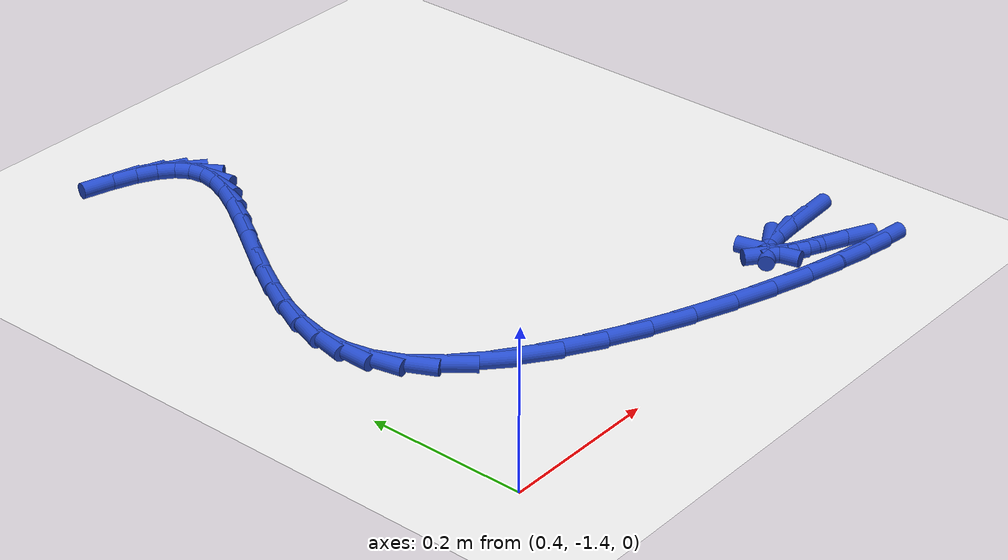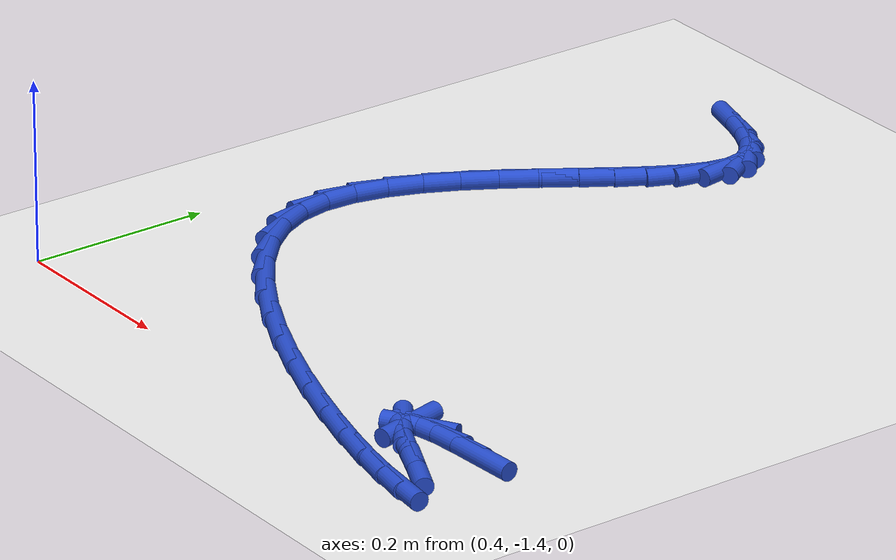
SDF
<sdf version="1.6">
 <world name="default">
  <model name="ground_plane">
   <static>1</static>
   <link name="link">
    <collision name="collision">
     <geometry><plane><normal>0 0 1</normal><size>100 100</size></plane></geometry>
     <surface><friction><ode><mu>100</mu><mu2>50</mu2></ode></friction></surface>
    </collision>
    <visual name="visual">
     <cast_shadows>0</cast_shadows>
     <geometry><plane><normal>0 0 1</normal><size>100 100</size></plane></geometry>
     <material>
      <script><uri>file://media/materials/scripts/gazebo.material</uri><name>Gazebo/WhiteGlow</name></script>
     </material>
    </visual>
   </link>
  </model>
  <model name="line">
   <link name="link_179">
    <pose>1.0431721151599405 -1.3121302822743477 0.01 0 1.57 0.05178944359856112</pose>
    <collision name="collision">
     <geometry><cylinder><radius>0.01</radius><length>0.08</length></cylinder></geometry>
    </collision>
    <visual name="visual">
     <material>
      <script><name>Gazebo/Blue</name><uri>file://media/materials/scripts/gazebo.material</uri></script>
     </material>
     <geometry><cylinder><radius>0.01</radius><length>0.08</length></cylinder></geometry>
    </visual>
   </link>
   <link name="link_180">
    <pose>1.0050944713799126 -1.314104067234999 0.01 0 1.57 0.09050213144816964</pose>
    <collision name="collision">
     <geometry><cylinder><radius>0.01</radius><length>0.08</length></cylinder></geometry>
    </collision>
    <visual name="visual">
     <material>
      <script><name>Gazebo/Blue</name><uri>file://media/materials/scripts/gazebo.material</uri></script>
     </material>
     <geometry><cylinder><radius>0.01</radius><length>0.08</length></cylinder></geometry>
    </visual>
   </link>
   <link name="link_181">
    <pose>0.9747226935560876 -1.3168603070951215 0.01 0 1.57 0.19191439328304402</pose>
    <collision name="collision">
     <geometry><cylinder><radius>0.01</radius><length>0.08</length></cylinder></geometry>
    </collision>
    <visual name="visual">
     <material>
      <script><name>Gazebo/Blue</name><uri>file://media/materials/scripts/gazebo.material</uri></script>
     </material>
     <geometry><cylinder><radius>0.01</radius><length>0.08</length></cylinder></geometry>
    </visual>
   </link>
   <link name="link_182">
    <pose>0.9536054838540192 -1.3209635028276825 0.01 0 1.57 0.5279433518543171</pose>
    <collision name="collision">
     <geometry><cylinder><radius>0.01</radius><length>0.08</length></cylinder></geometry>
    </collision>
    <visual name="visual">
     <material>
      <script><name>Gazebo/Blue</name><uri>file://media/materials/scripts/gazebo.material</uri></script>
     </material>
     <geometry><cylinder><radius>0.01</radius><length>0.08</length></cylinder></geometry>
    </visual>
   </link>
   <link name="link_183">
    <pose>0.9432915444392618 -1.3269781554056503 0.01 0 1.57 -1.3352194361258076</pose>
    <collision name="collision">
     <geometry><cylinder><radius>0.01</radius><length>0.08</length></cylinder></geometry>
    </collision>
    <visual name="visual">
     <material>
      <script><name>Gazebo/Blue</name><uri>file://media/materials/scripts/gazebo.material</uri></script>
     </material>
     <geometry><cylinder><radius>0.01</radius><length>0.08</length></cylinder></geometry>
    </visual>
   </link>
   <link name="link_184">
    <pose>0.9453295774773689 -1.335468765801992 0.01 0 1.57 -0.6263001621375363</pose>
    <collision name="collision">
     <geometry><cylinder><radius>0.01</radius><length>0.08</length></cylinder></geometry>
    </collision>
    <visual name="visual">
     <material>
      <script><name>Gazebo/Blue</name><uri>file://media/materials/scripts/gazebo.material</uri></script>
     </material>
     <geometry><cylinder><radius>0.01</radius><length>0.08</length></cylinder></geometry>
    </visual>
   </link>
   <link name="link_185">
    <pose>0.9612682851338952 -1.3469998349896763 0.01 0 1.57 -0.4606534770002604</pose>
    <collision name="collision">
     <geometry><cylinder><radius>0.01</radius><length>0.08</length></cylinder></geometry>
    </collision>
    <visual name="visual">
     <material>
      <script><name>Gazebo/Blue</name><uri>file://media/materials/scripts/gazebo.material</uri></script>
     </material>
     <geometry><cylinder><radius>0.01</radius><length>0.08</length></cylinder></geometry>
    </visual>
   </link>
   <link name="link_186">
    <pose>0.990772909244224 -1.3616418858596053 0.01 0 1.57 -0.4260387705331856</pose>
    <collision name="collision">
     <geometry><cylinder><radius>0.01</radius><length>0.08</length></cylinder></geometry>
    </collision>
    <visual name="visual">
     <material>
      <script><name>Gazebo/Blue</name><uri>file://media/materials/scripts/gazebo.material</uri></script>
     </material>
     <geometry><cylinder><radius>0.01</radius><length>0.08</length></cylinder></geometry>
    </visual>
   </link>
   <link name="link_187">
    <pose>1.0253054133053217 -1.3773139546823654 0.01 0 1.57 -0.4535399416467822</pose>
    <collision name="collision">
     <geometry><cylinder><radius>0.01</radius><length>0.08</length></cylinder></geometry>
    </collision>
    <visual name="visual">
     <material>
      <script><name>Gazebo/Blue</name><uri>file://media/materials/scripts/gazebo.material</uri></script>
     </material>
     <geometry><cylinder><radius>0.01</radius><length>0.08</length></cylinder></geometry>
    </visual>
   </link>
   <link name="link_192">
    <pose>1.0436695792472706 -1.4117258055618636 0.01 0 1.57 -0.12121137571758568</pose>
    <collision name="collision">
     <geometry><cylinder><radius>0.01</radius><length>0.08</length></cylinder></geometry>
    </collision>
    <visual name="visual">
     <material>
      <script><name>Gazebo/Blue</name><uri>file://media/materials/scripts/gazebo.material</uri></script>
     </material>
     <geometry><cylinder><radius>0.01</radius><length>0.08</length></cylinder></geometry>
    </visual>
   </link>
   <link name="link_193">
    <pose>1.0154665960865423 -1.4082904423262468 0.01 0 1.57 -0.18235099122231974</pose>
    <collision name="collision">
     <geometry><cylinder><radius>0.01</radius><length>0.08</length></cylinder></geometry>
    </collision>
    <visual name="visual">
     <material>
      <script><name>Gazebo/Blue</name><uri>file://media/materials/scripts/gazebo.material</uri></script>
     </material>
     <geometry><cylinder><radius>0.01</radius><length>0.08</length></cylinder></geometry>
    </visual>
   </link>
   <link name="link_194">
    <pose>0.9798114709576229 -1.4017156582025594 0.01 0 1.57 -0.2256996109872201</pose>
    <collision name="collision">
     <geometry><cylinder><radius>0.01</radius><length>0.08</length></cylinder></geometry>
    </collision>
    <visual name="visual">
     <material>
      <script><name>Gazebo/Blue</name><uri>file://media/materials/scripts/gazebo.material</uri></script>
     </material>
     <geometry><cylinder><radius>0.01</radius><length>0.08</length></cylinder></geometry>
    </visual>
   </link>
   <link name="link_195">
    <pose>0.9380969396623113 -1.3921375117713966 0.01 0 1.57 -0.262154296607183</pose>
    <collision name="collision">
     <geometry><cylinder><radius>0.01</radius><length>0.08</length></cylinder></geometry>
    </collision>
    <visual name="visual">
     <material>
      <script><name>Gazebo/Blue</name><uri>file://media/materials/scripts/gazebo.material</uri></script>
     </material>
     <geometry><cylinder><radius>0.01</radius><length>0.08</length></cylinder></geometry>
    </visual>
   </link>
   <link name="link_196">
    <pose>0.8917157380024069 -1.379692061613352 0.01 0 1.57 -0.29662487289597983</pose>
    <collision name="collision">
     <geometry><cylinder><radius>0.01</radius><length>0.08</length></cylinder></geometry>
    </collision>
    <visual name="visual">
     <material>
      <script><name>Gazebo/Blue</name><uri>file://media/materials/scripts/gazebo.material</uri></script>
     </material>
     <geometry><cylinder><radius>0.01</radius><length>0.08</length></cylinder></geometry>
    </visual>
   </link>
   <link name="link_197">
    <pose>0.8420606017797092 -1.3645153663090208 0.01 0 1.57 -0.33207215948953117</pose>
    <collision name="collision">
     <geometry><cylinder><radius>0.01</radius><length>0.08</length></cylinder></geometry>
    </collision>
    <visual name="visual">
     <material>
      <script><name>Gazebo/Blue</name><uri>file://media/materials/scripts/gazebo.material</uri></script>
     </material>
     <geometry><cylinder><radius>0.01</radius><length>0.08</length></cylinder></geometry>
    </visual>
   </link>
   <link name="link_198">
    <pose>0.790524266796017 -1.346743484438997 0.01 0 1.57 -0.37087699632525434</pose>
    <collision name="collision">
     <geometry><cylinder><radius>0.01</radius><length>0.08</length></cylinder></geometry>
    </collision>
    <visual name="visual">
     <material>
      <script><name>Gazebo/Blue</name><uri>file://media/materials/scripts/gazebo.material</uri></script>
     </material>
     <geometry><cylinder><radius>0.01</radius><length>0.08</length></cylinder></geometry>
    </visual>
   </link>
   <link name="link_199">
    <pose>0.7384994688531303 -1.326512474583876 0.01 0 1.57 -0.415506938066103</pose>
    <collision name="collision">
     <geometry><cylinder><radius>0.01</radius><length>0.08</length></cylinder></geometry>
    </collision>
    <visual name="visual">
     <material>
      <script><name>Gazebo/Blue</name><uri>file://media/materials/scripts/gazebo.material</uri></script>
     </material>
     <geometry><cylinder><radius>0.01</radius><length>0.08</length></cylinder></geometry>
    </visual>
   </link>
   <link name="link_200">
    <pose>0.6873789437528479 -1.3039583953242513 0.01 0 1.57 -0.4690293187299955</pose>
    <collision name="collision">
     <geometry><cylinder><radius>0.01</radius><length>0.08</length></cylinder></geometry>
    </collision>
    <visual name="visual">
     <material>
      <script><name>Gazebo/Blue</name><uri>file://media/materials/scripts/gazebo.material</uri></script>
     </material>
     <geometry><cylinder><radius>0.01</radius><length>0.08</length></cylinder></geometry>
    </visual>
   </link>
   <link name="link_201">
    <pose>0.6385554272969693 -1.2792173052407179 0.01 0 1.57 -0.5357107358571456</pose>
    <collision name="collision">
     <geometry><cylinder><radius>0.01</radius><length>0.08</length></cylinder></geometry>
    </collision>
    <visual name="visual">
     <material>
      <script><name>Gazebo/Blue</name><uri>file://media/materials/scripts/gazebo.material</uri></script>
     </material>
     <geometry><cylinder><radius>0.01</radius><length>0.08</length></cylinder></geometry>
    </visual>
   </link>
   <link name="link_202">
    <pose>0.593421655287294 -1.2524252629138712 0.01 0 1.57 -0.6218821888685976</pose>
    <collision name="collision">
     <geometry><cylinder><radius>0.01</radius><length>0.08</length></cylinder></geometry>
    </collision>
    <visual name="visual">
     <material>
      <script><name>Gazebo/Blue</name><uri>file://media/materials/scripts/gazebo.material</uri></script>
     </material>
     <geometry><cylinder><radius>0.01</radius><length>0.08</length></cylinder></geometry>
    </visual>
   </link>
   <link name="link_203">
    <pose>0.5533703635256207 -1.2237183269243042 0.01 0 1.57 -0.7371961359823042</pose>
    <collision name="collision">
     <geometry><cylinder><radius>0.01</radius><length>0.08</length></cylinder></geometry>
    </collision>
    <visual name="visual">
     <material>
      <script><name>Gazebo/Blue</name><uri>file://media/materials/scripts/gazebo.material</uri></script>
     </material>
     <geometry><cylinder><radius>0.01</radius><length>0.08</length></cylinder></geometry>
    </visual>
   </link>
   <link name="link_204">
    <pose>0.5197942878137497 -1.1932325558526122 0.01 0 1.57 -0.8959550753011244</pose>
    <collision name="collision">
     <geometry><cylinder><radius>0.01</radius><length>0.08</length></cylinder></geometry>
    </collision>
    <visual name="visual">
     <material>
      <script><name>Gazebo/Blue</name><uri>file://media/materials/scripts/gazebo.material</uri></script>
     </material>
     <geometry><cylinder><radius>0.01</radius><length>0.08</length></cylinder></geometry>
    </visual>
   </link>
   <link name="link_205">
    <pose>0.4940861639534794 -1.16110400827939 0.01 0 1.57 -1.115245074482472</pose>
    <collision name="collision">
     <geometry><cylinder><radius>0.01</radius><length>0.08</length></cylinder></geometry>
    </collision>
    <visual name="visual">
     <material>
      <script><name>Gazebo/Blue</name><uri>file://media/materials/scripts/gazebo.material</uri></script>
     </material>
     <geometry><cylinder><radius>0.01</radius><length>0.08</length></cylinder></geometry>
    </visual>
   </link>
   <link name="link_206">
    <pose>0.47760869749482904 -1.1274710441529379 0.01 0 1.57 -1.3723702969778497</pose>
    <collision name="collision">
     <geometry><cylinder><radius>0.01</radius><length>0.08</length></cylinder></geometry>
    </collision>
    <visual name="visual">
     <material>
      <script><name>Gazebo/Blue</name><uri>file://media/materials/scripts/gazebo.material</uri></script>
     </material>
     <geometry><cylinder><radius>0.01</radius><length>0.08</length></cylinder></geometry>
    </visual>
   </link>
   <link name="link_207">
    <pose>0.47058887795526355 -1.0925590589955447 0.01 0 1.57 1.537128827319597</pose>
    <collision name="collision">
     <geometry><cylinder><radius>0.01</radius><length>0.08</length></cylinder></geometry>
    </collision>
    <visual name="visual">
     <material>
      <script><name>Gazebo/Blue</name><uri>file://media/materials/scripts/gazebo.material</uri></script>
     </material>
     <geometry><cylinder><radius>0.01</radius><length>0.08</length></cylinder></geometry>
    </visual>
   </link>
   <link name="link_208">
    <pose>0.47179644656975184 -1.056705124520619 0.01 0 1.57 1.351897972928461</pose>
    <collision name="collision">
     <geometry><cylinder><radius>0.01</radius><length>0.08</length></cylinder></geometry>
    </collision>
    <visual name="visual">
     <material>
      <script><name>Gazebo/Blue</name><uri>file://media/materials/scripts/gazebo.material</uri></script>
     </material>
     <geometry><cylinder><radius>0.01</radius><length>0.08</length></cylinder></geometry>
    </visual>
   </link>
   <link name="link_209">
    <pose>0.47990555253871764 -1.0202536381351048 0.01 0 1.57 1.2139246641287422</pose>
    <collision name="collision">
     <geometry><cylinder><radius>0.01</radius><length>0.08</length></cylinder></geometry>
    </collision>
    <visual name="visual">
     <material>
      <script><name>Gazebo/Blue</name><uri>file://media/materials/scripts/gazebo.material</uri></script>
     </material>
     <geometry><cylinder><radius>0.01</radius><length>0.08</length></cylinder></geometry>
    </visual>
   </link>
   <link name="link_210">
    <pose>0.49359034506258515 -0.9835489972459416 0.01 0 1.57 1.1153114347125248</pose>
    <collision name="collision">
     <geometry><cylinder><radius>0.01</radius><length>0.08</length></cylinder></geometry>
    </collision>
    <visual name="visual">
     <material>
      <script><name>Gazebo/Blue</name><uri>file://media/materials/scripts/gazebo.material</uri></script>
     </material>
     <geometry><cylinder><radius>0.01</radius><length>0.08</length></cylinder></geometry>
    </visual>
   </link>
   <link name="link_211">
    <pose>0.5115249733417782 -0.9469355992600724 0.01 0 1.57 1.0477911763997645</pose>
    <collision name="collision">
     <geometry><cylinder><radius>0.01</radius><length>0.08</length></cylinder></geometry>
    </collision>
    <visual name="visual">
     <material>
      <script><name>Gazebo/Blue</name><uri>file://media/materials/scripts/gazebo.material</uri></script>
     </material>
     <geometry><cylinder><radius>0.01</radius><length>0.08</length></cylinder></geometry>
    </visual>
   </link>
   <link name="link_212">
    <pose>0.5323835865767205 -0.9107578415844402 0.01 0 1.57 1.0054572604447969</pose>
    <collision name="collision">
     <geometry><cylinder><radius>0.01</radius><length>0.08</length></cylinder></geometry>
    </collision>
    <visual name="visual">
     <material>
      <script><name>Gazebo/Blue</name><uri>file://media/materials/scripts/gazebo.material</uri></script>
     </material>
     <geometry><cylinder><radius>0.01</radius><length>0.08</length></cylinder></geometry>
    </visual>
   </link>
   <link name="link_213">
    <pose>0.5548403339678357 -0.8753601216259863 0.01 0 1.57 0.985218067552668</pose>
    <collision name="collision">
     <geometry><cylinder><radius>0.01</radius><length>0.08</length></cylinder></geometry>
    </collision>
    <visual name="visual">
     <material>
      <script><name>Gazebo/Blue</name><uri>file://media/materials/scripts/gazebo.material</uri></script>
     </material>
     <geometry><cylinder><radius>0.01</radius><length>0.08</length></cylinder></geometry>
    </visual>
   </link>
   <link name="link_214">
    <pose>0.5775693647155481 -0.8410868367916536 0.01 0 1.57 0.9869027371645345</pose>
    <collision name="collision">
     <geometry><cylinder><radius>0.01</radius><length>0.08</length></cylinder></geometry>
    </collision>
    <visual name="visual">
     <material>
      <script><name>Gazebo/Blue</name><uri>file://media/materials/scripts/gazebo.material</uri></script>
     </material>
     <geometry><cylinder><radius>0.01</radius><length>0.08</length></cylinder></geometry>
    </visual>
   </link>
   <link name="link_215">
    <pose>0.5992448280202815 -0.8082823844883842 0.01 0 1.57 1.0139035552540896</pose>
    <collision name="collision">
     <geometry><cylinder><radius>0.01</radius><length>0.08</length></cylinder></geometry>
    </collision>
    <visual name="visual">
     <material>
      <script><name>Gazebo/Blue</name><uri>file://media/materials/scripts/gazebo.material</uri></script>
     </material>
     <geometry><cylinder><radius>0.01</radius><length>0.08</length></cylinder></geometry>
    </visual>
   </link>
   <link name="link_216">
    <pose>0.6185408730824593 -0.7772911621231199 0.01 0 1.57 1.0751091503332868</pose>
    <collision name="collision">
     <geometry><cylinder><radius>0.01</radius><length>0.08</length></cylinder></geometry>
    </collision>
    <visual name="visual">
     <material>
      <script><name>Gazebo/Blue</name><uri>file://media/materials/scripts/gazebo.material</uri></script>
     </material>
     <geometry><cylinder><radius>0.01</radius><length>0.08</length></cylinder></geometry>
    </visual>
   </link>
   <link name="link_217">
    <pose>0.6341316491025056 -0.7484575671028031 0.01 0 1.57 1.1894053913079632</pose>
    <collision name="collision">
     <geometry><cylinder><radius>0.01</radius><length>0.08</length></cylinder></geometry>
    </collision>
    <visual name="visual">
     <material>
      <script><name>Gazebo/Blue</name><uri>file://media/materials/scripts/gazebo.material</uri></script>
     </material>
     <geometry><cylinder><radius>0.01</radius><length>0.08</length></cylinder></geometry>
    </visual>
   </link>
   <link name="link_218">
    <pose>0.6446913052808443 -0.7221259968343761 0.01 0 1.57 1.3937198677630902</pose>
    <collision name="collision">
     <geometry><cylinder><radius>0.01</radius><length>0.08</length></cylinder></geometry>
    </collision>
    <visual name="visual">
     <material>
      <script><name>Gazebo/Blue</name><uri>file://media/materials/scripts/gazebo.material</uri></script>
     </material>
     <geometry><cylinder><radius>0.01</radius><length>0.08</length></cylinder></geometry>
    </visual>
   </link>
   <link name="link_219">
    <pose>0.6488939908178993 -0.6986408487247809 0.01 0 1.57 -1.4052115386361312</pose>
    <collision name="collision">
     <geometry><cylinder><radius>0.01</radius><length>0.08</length></cylinder></geometry>
    </collision>
    <visual name="visual">
     <material>
      <script><name>Gazebo/Blue</name><uri>file://media/materials/scripts/gazebo.material</uri></script>
     </material>
     <geometry><cylinder><radius>0.01</radius><length>0.08</length></cylinder></geometry>
    </visual>
   </link>
   <link name="link_220">
    <pose>0.6454974559324256 -0.6783163031968072 0.01 0 1.57 -1.001483789650159</pose>
    <collision name="collision">
     <geometry><cylinder><radius>0.01</radius><length>0.08</length></cylinder></geometry>
    </collision>
    <visual name="visual">
     <material>
      <script><name>Gazebo/Blue</name><uri>file://media/materials/scripts/gazebo.material</uri></script>
     </material>
     <geometry><cylinder><radius>0.01</radius><length>0.08</length></cylinder></geometry>
    </visual>
   </link>
   <link name="link_221">
    <pose>0.6344404346753061 -0.6610396825983966 0.01 0 1.57 -0.686019186563488</pose>
    <collision name="collision">
     <geometry><cylinder><radius>0.01</radius><length>0.08</length></cylinder></geometry>
    </collision>
    <visual name="visual">
     <material>
      <script><name>Gazebo/Blue</name><uri>file://media/materials/scripts/gazebo.material</uri></script>
     </material>
     <geometry><cylinder><radius>0.01</radius><length>0.08</length></cylinder></geometry>
    </visual>
   </link>
   <link name="link_222">
    <pose>0.6165362936909753 -0.6463821796447857 0.01 0 1.57 -0.48075726992670814</pose>
    <collision name="collision">
     <geometry><cylinder><radius>0.01</radius><length>0.08</length></cylinder></geometry>
    </collision>
    <visual name="visual">
     <material>
      <script><name>Gazebo/Blue</name><uri>file://media/materials/scripts/gazebo.material</uri></script>
     </material>
     <geometry><cylinder><radius>0.01</radius><length>0.08</length></cylinder></geometry>
    </visual>
   </link>
   <link name="link_223">
    <pose>0.5926189930871477 -0.6339075436926723 0.01 0 1.57 -0.35324021115435494</pose>
    <collision name="collision">
     <geometry><cylinder><radius>0.01</radius><length>0.08</length></cylinder></geometry>
    </collision>
    <visual name="visual">
     <material>
      <script><name>Gazebo/Blue</name><uri>file://media/materials/scripts/gazebo.material</uri></script>
     </material>
     <geometry><cylinder><radius>0.01</radius><length>0.08</length></cylinder></geometry>
    </visual>
   </link>
   <link name="link_224">
    <pose>0.5635224929715383 -0.6231795240987548 0.01 0 1.57 -0.27450451084262006</pose>
    <collision name="collision">
     <geometry><cylinder><radius>0.01</radius><length>0.08</length></cylinder></geometry>
    </collision>
    <visual name="visual">
     <material>
      <script><name>Gazebo/Blue</name><uri>file://media/materials/scripts/gazebo.material</uri></script>
     </material>
     <geometry><cylinder><radius>0.01</radius><length>0.08</length></cylinder></geometry>
    </visual>
   </link>
  </model>
 </world>
</sdf>
